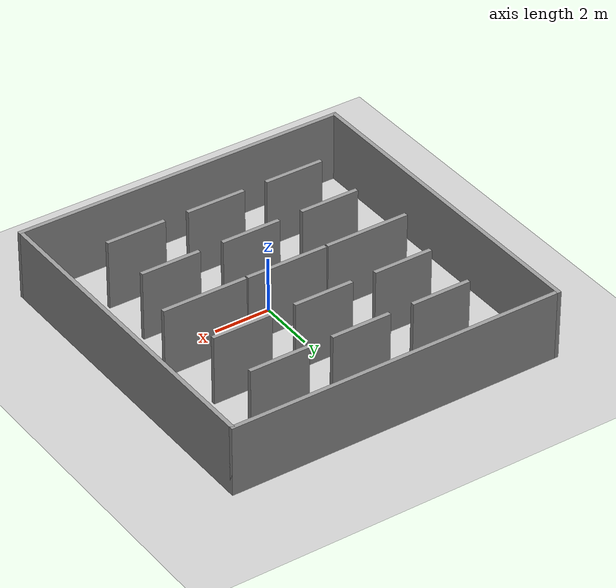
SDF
<sdf version="1.7">
 <world name="default">
  <light name="sun" type="directional">
   <pose>0 0 10 0 -0 0</pose>
   <diffuse>0.8 0.8 0.8 1</diffuse>
   <specular>0.2 0.2 0.2 1</specular>
   <attenuation>
    <range>1000</range>
    <constant>0.9</constant>
    <linear>0.01</linear>
    <quadratic>0.001</quadratic>
   </attenuation>
   <direction>-0.5 0.1 -0.9</direction>
   <spot><inner_angle>0</inner_angle><outer_angle>0</outer_angle><falloff>0</falloff></spot>
  </light>
  <model name="ground_plane">
   <static>1</static>
   <link name="link">
    <collision name="collision">
     <geometry><plane><normal>0 0 1</normal><size>100 100</size></plane></geometry>
     <surface><friction><ode><mu>100</mu><mu2>50</mu2></ode></friction></surface>
    </collision>
    <visual name="visual">
     <cast_shadows>0</cast_shadows>
     <geometry><plane><normal>0 0 1</normal><size>100 100</size></plane></geometry>
     <material>
      <script><uri>file://media/materials/scripts/gazebo.material</uri><name>Gazebo/Grey</name></script>
     </material>
    </visual>
   </link>
  </model>
  <gravity>0 0 -9.8</gravity>
  <magnetic_field>6e-06 2.3e-05 -4.2e-05</magnetic_field>
  <atmosphere type="adiabatic"/>
  <physics type="ode">
   <max_step_size>0.001</max_step_size>
   <real_time_factor>1</real_time_factor>
   <real_time_update_rate>1000</real_time_update_rate>
  </physics>
  <scene><ambient>0.4 0.4 0.4 1</ambient><background>0.7 0.7 0.7 1</background><shadows>1</shadows></scene>
  <spherical_coordinates>
   <surface_model>EARTH_WGS84</surface_model>
   <latitude_deg>0</latitude_deg>
   <longitude_deg>0</longitude_deg>
   <elevation>0</elevation>
   <heading_deg>0</heading_deg>
  </spherical_coordinates>
  <model name="Simple2">
   <pose>0 1 0 0 -0 1.57071</pose>
   <link name="Wall_0">
    <collision name="Wall_0_Collision">
     <geometry><box><size>2.15 0.15 2.5</size></box></geometry>
     <pose>0 0 1.25 0 -0 0</pose>
    </collision>
    <visual name="Wall_0_Visual">
     <pose>0 0 1.25 0 -0 0</pose>
     <geometry><box><size>2.15 0.15 2.5</size></box></geometry>
     <material>
      <script><uri>file://media/materials/scripts/gazebo.material</uri><name>Gazebo/Grey</name></script>
      <ambient>1 1 1 1</ambient>
     </material>
     <meta><layer>0</layer></meta>
    </visual>
    <pose>-4 -3 0 0 -0 1.5708</pose>
   </link>
   <link name="Wall_11">
    <collision name="Wall_11_Collision">
     <geometry><box><size>2.15 0.15 2.5</size></box></geometry>
     <pose>0 0 1.25 0 -0 0</pose>
    </collision>
    <visual name="Wall_11_Visual">
     <pose>0 0 1.25 0 -0 0</pose>
     <geometry><box><size>2.15 0.15 2.5</size></box></geometry>
     <material>
      <script><uri>file://media/materials/scripts/gazebo.material</uri><name>Gazebo/Grey</name></script>
      <ambient>1 1 1 1</ambient>
     </material>
     <meta><layer>0</layer></meta>
    </visual>
    <pose>-2 -3 0 0 -0 1.5708</pose>
   </link>
   <link name="Wall_13">
    <collision name="Wall_13_Collision">
     <geometry><box><size>3.05 0.15 2.5</size></box></geometry>
     <pose>0 0 1.25 0 -0 0</pose>
    </collision>
    <visual name="Wall_13_Visual">
     <pose>0 0 1.25 0 -0 0</pose>
     <geometry><box><size>3.05 0.15 2.5</size></box></geometry>
     <material>
      <script><uri>file://media/materials/scripts/gazebo.material</uri><name>Gazebo/Grey</name></script>
      <ambient>1 1 1 1</ambient>
     </material>
     <meta><layer>0</layer></meta>
    </visual>
    <pose>0 -3.05 0 0 -0 1.5708</pose>
   </link>
   <link name="Wall_15">
    <collision name="Wall_15_Collision">
     <geometry><box><size>2.15 0.15 2.5</size></box></geometry>
     <pose>0 0 1.25 0 -0 0</pose>
    </collision>
    <visual name="Wall_15_Visual">
     <pose>0 0 1.25 0 -0 0</pose>
     <geometry><box><size>2.15 0.15 2.5</size></box></geometry>
     <material>
      <script><uri>file://media/materials/scripts/gazebo.material</uri><name>Gazebo/Grey</name></script>
      <ambient>1 1 1 1</ambient>
     </material>
     <meta><layer>0</layer></meta>
    </visual>
    <pose>2 -3 0 0 -0 1.5708</pose>
   </link>
   <link name="Wall_17">
    <collision name="Wall_17_Collision">
     <geometry><box><size>2.15 0.15 2.5</size></box></geometry>
     <pose>0 0 1.25 0 -0 0</pose>
    </collision>
    <visual name="Wall_17_Visual">
     <pose>0 0 1.25 0 -0 0</pose>
     <geometry><box><size>2.15 0.15 2.5</size></box></geometry>
     <material>
      <script><uri>file://media/materials/scripts/gazebo.material</uri><name>Gazebo/Grey</name></script>
      <ambient>1 1 1 1</ambient>
     </material>
     <meta><layer>0</layer></meta>
    </visual>
    <pose>4 -3 0 0 -0 1.5708</pose>
   </link>
   <link name="Wall_19">
    <collision name="Wall_19_Collision">
     <geometry><box><size>2.15 0.15 2.5</size></box></geometry>
     <pose>0 0 1.25 0 -0 0</pose>
    </collision>
    <visual name="Wall_19_Visual">
     <pose>0 0 1.25 0 -0 0</pose>
     <geometry><box><size>2.15 0.15 2.5</size></box></geometry>
     <material>
      <script><uri>file://media/materials/scripts/gazebo.material</uri><name>Gazebo/Grey</name></script>
      <ambient>1 1 1 1</ambient>
     </material>
     <meta><layer>0</layer></meta>
    </visual>
    <pose>-2 0 0 0 -0 1.5708</pose>
   </link>
   <link name="Wall_2">
    <collision name="Wall_2_Collision">
     <geometry><box><size>2.15 0.15 2.5</size></box></geometry>
     <pose>0 0 1.25 0 -0 0</pose>
    </collision>
    <visual name="Wall_2_Visual">
     <pose>0 0 1.25 0 -0 0</pose>
     <geometry><box><size>2.15 0.15 2.5</size></box></geometry>
     <material>
      <script><uri>file://media/materials/scripts/gazebo.material</uri><name>Gazebo/Grey</name></script>
      <ambient>1 1 1 1</ambient>
     </material>
     <meta><layer>0</layer></meta>
    </visual>
    <pose>-4 0 0 0 -0 1.5708</pose>
   </link>
   <link name="Wall_21">
    <collision name="Wall_21_Collision">
     <geometry><box><size>2.95 0.15 2.5</size></box></geometry>
     <pose>0 0 1.25 0 -0 0</pose>
    </collision>
    <visual name="Wall_21_Visual">
     <pose>0 0 1.25 0 -0 0</pose>
     <geometry><box><size>2.95 0.15 2.5</size></box></geometry>
     <material>
      <script><uri>file://media/materials/scripts/gazebo.material</uri><name>Gazebo/Grey</name></script>
      <ambient>1 1 1 1</ambient>
     </material>
     <meta><layer>0</layer></meta>
    </visual>
    <pose>0 0 0 0 -0 1.5708</pose>
   </link>
   <link name="Wall_23">
    <collision name="Wall_23_Collision">
     <geometry><box><size>2.15 0.15 2.5</size></box></geometry>
     <pose>0 0 1.25 0 -0 0</pose>
    </collision>
    <visual name="Wall_23_Visual">
     <pose>0 0 1.25 0 -0 0</pose>
     <geometry><box><size>2.15 0.15 2.5</size></box></geometry>
     <material>
      <script><uri>file://media/materials/scripts/gazebo.material</uri><name>Gazebo/Grey</name></script>
      <ambient>1 1 1 1</ambient>
     </material>
     <meta><layer>0</layer></meta>
    </visual>
    <pose>2 0 0 0 -0 1.5708</pose>
   </link>
   <link name="Wall_25">
    <collision name="Wall_25_Collision">
     <geometry><box><size>2.15 0.15 2.5</size></box></geometry>
     <pose>0 0 1.25 0 -0 0</pose>
    </collision>
    <visual name="Wall_25_Visual">
     <pose>0 0 1.25 0 -0 0</pose>
     <geometry><box><size>2.15 0.15 2.5</size></box></geometry>
     <material>
      <script><uri>file://media/materials/scripts/gazebo.material</uri><name>Gazebo/Grey</name></script>
      <ambient>1 1 1 1</ambient>
     </material>
     <meta><layer>0</layer></meta>
    </visual>
    <pose>4 0 0 0 -0 1.5708</pose>
   </link>
   <link name="Wall_27">
    <collision name="Wall_27_Collision">
     <geometry><box><size>2.15 0.15 2.5</size></box></geometry>
     <pose>0 0 1.25 0 -0 0</pose>
    </collision>
    <visual name="Wall_27_Visual">
     <pose>0 0 1.25 0 -0 0</pose>
     <geometry><box><size>2.15 0.15 2.5</size></box></geometry>
     <material>
      <script><uri>file://media/materials/scripts/gazebo.material</uri><name>Gazebo/Grey</name></script>
      <ambient>1 1 1 1</ambient>
     </material>
     <meta><layer>0</layer></meta>
    </visual>
    <pose>-2 3 0 0 -0 1.5708</pose>
   </link>
   <link name="Wall_29">
    <collision name="Wall_29_Collision">
     <geometry><box><size>3.05 0.15 2.5</size></box></geometry>
     <pose>0 0 1.25 0 -0 0</pose>
    </collision>
    <visual name="Wall_29_Visual">
     <pose>0 0 1.25 0 -0 0</pose>
     <geometry><box><size>3.05 0.15 2.5</size></box></geometry>
     <material>
      <script><uri>file://media/materials/scripts/gazebo.material</uri><name>Gazebo/Grey</name></script>
      <ambient>1 1 1 1</ambient>
     </material>
     <meta><layer>0</layer></meta>
    </visual>
    <pose>0 3.05 0 0 -0 1.5708</pose>
   </link>
   <link name="Wall_31">
    <collision name="Wall_31_Collision">
     <geometry><box><size>2.15 0.15 2.5</size></box></geometry>
     <pose>0 0 1.25 0 -0 0</pose>
    </collision>
    <visual name="Wall_31_Visual">
     <pose>0 0 1.25 0 -0 0</pose>
     <geometry><box><size>2.15 0.15 2.5</size></box></geometry>
     <material>
      <script><uri>file://media/materials/scripts/gazebo.material</uri><name>Gazebo/Grey</name></script>
      <ambient>1 1 1 1</ambient>
     </material>
     <meta><layer>0</layer></meta>
    </visual>
    <pose>2 3 0 0 -0 1.5708</pose>
   </link>
   <link name="Wall_33">
    <collision name="Wall_33_Collision">
     <geometry><box><size>2.15 0.15 2.5</size></box></geometry>
     <pose>0 0 1.25 0 -0 0</pose>
    </collision>
    <visual name="Wall_33_Visual">
     <pose>0 0 1.25 0 -0 0</pose>
     <geometry><box><size>2.15 0.15 2.5</size></box></geometry>
     <material>
      <script><uri>file://media/materials/scripts/gazebo.material</uri><name>Gazebo/Grey</name></script>
      <ambient>1 1 1 1</ambient>
     </material>
     <meta><layer>0</layer></meta>
    </visual>
    <pose>4 3 0 0 -0 1.5708</pose>
   </link>
   <link name="Wall_4">
    <collision name="Wall_4_Collision">
     <geometry><box><size>2.15 0.15 2.5</size></box></geometry>
     <pose>0 0 1.25 0 -0 0</pose>
    </collision>
    <visual name="Wall_4_Visual">
     <pose>0 0 1.25 0 -0 0</pose>
     <geometry><box><size>2.15 0.15 2.5</size></box></geometry>
     <material>
      <script><uri>file://media/materials/scripts/gazebo.material</uri><name>Gazebo/Grey</name></script>
      <ambient>1 1 1 1</ambient>
     </material>
     <meta><layer>0</layer></meta>
    </visual>
    <pose>-4 3 0 0 -0 1.5708</pose>
   </link>
   <link name="Wall_6">
    <collision name="Wall_6_Collision">
     <geometry><box><size>12.15 0.15 2.5</size></box></geometry>
     <pose>0 0 1.25 0 -0 0</pose>
    </collision>
    <visual name="Wall_6_Visual">
     <pose>0 0 1.25 0 -0 0</pose>
     <geometry><box><size>12.15 0.15 2.5</size></box></geometry>
     <material>
      <script><uri>file://media/materials/scripts/gazebo.material</uri><name>Gazebo/Grey</name></script>
      <ambient>1 1 1 1</ambient>
     </material>
     <meta><layer>0</layer></meta>
    </visual>
    <pose>-6 0 0 0 -0 -1.5708</pose>
   </link>
   <link name="Wall_7">
    <collision name="Wall_7_Collision">
     <geometry><box><size>12.15 0.15 2.5</size></box></geometry>
     <pose>0 0 1.25 0 -0 0</pose>
    </collision>
    <visual name="Wall_7_Visual">
     <pose>0 0 1.25 0 -0 0</pose>
     <geometry><box><size>12.15 0.15 2.5</size></box></geometry>
     <material>
      <script><uri>file://media/materials/scripts/gazebo.material</uri><name>Gazebo/Grey</name></script>
      <ambient>1 1 1 1</ambient>
     </material>
     <meta><layer>0</layer></meta>
    </visual>
    <pose>0 -6 0 0 -0 0</pose>
   </link>
   <link name="Wall_8">
    <collision name="Wall_8_Collision">
     <geometry><box><size>12.15 0.15 2.5</size></box></geometry>
     <pose>0 0 1.25 0 -0 0</pose>
    </collision>
    <visual name="Wall_8_Visual">
     <pose>0 0 1.25 0 -0 0</pose>
     <geometry><box><size>12.15 0.15 2.5</size></box></geometry>
     <material>
      <script><uri>file://media/materials/scripts/gazebo.material</uri><name>Gazebo/Grey</name></script>
      <ambient>1 1 1 1</ambient>
     </material>
     <meta><layer>0</layer></meta>
    </visual>
    <pose>6 0 0 0 -0 1.5708</pose>
   </link>
   <link name="Wall_9">
    <collision name="Wall_9_Collision">
     <geometry><box><size>12.15 0.15 2.5</size></box></geometry>
     <pose>0 0 1.25 0 -0 0</pose>
    </collision>
    <visual name="Wall_9_Visual">
     <pose>0 0 1.25 0 -0 0</pose>
     <geometry><box><size>12.15 0.15 2.5</size></box></geometry>
     <material>
      <script><uri>file://media/materials/scripts/gazebo.material</uri><name>Gazebo/Grey</name></script>
      <ambient>1 1 1 1</ambient>
     </material>
     <meta><layer>0</layer></meta>
    </visual>
    <pose>0 6 0 0 -0 3.14159</pose>
   </link>
   <static>1</static>
  </model>
 </world>
</sdf>
